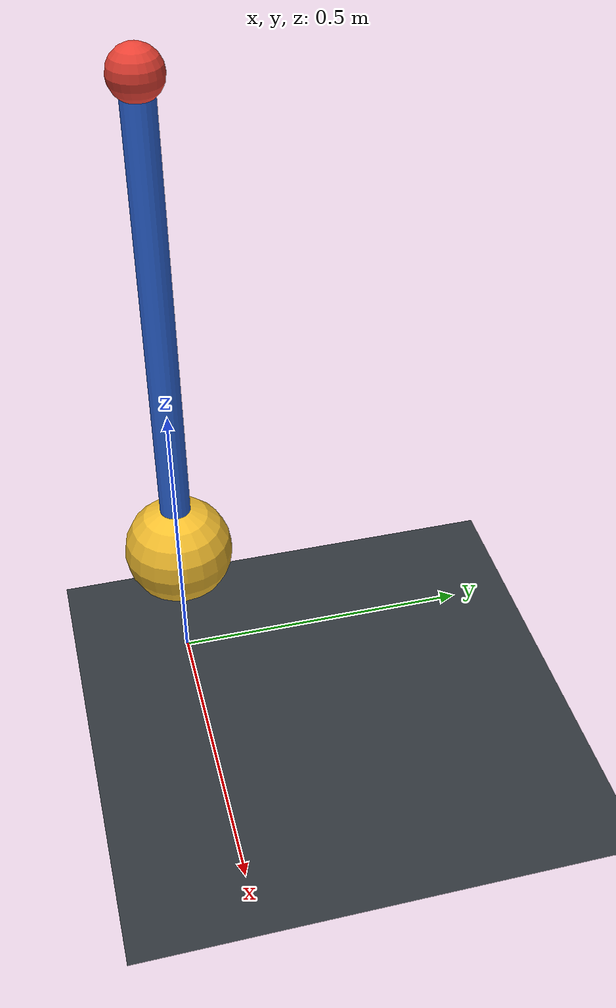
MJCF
<mujoco model="pendulum_demo">
  <compiler angle="degree"/>
  <option timestep="0.002" gravity="0 0 -9.81"/>

  <asset>
    <texture name="grid" type="2d" builtin="checker" rgb1="0.14 0.16 0.18" rgb2="0.22 0.25 0.27" width="300" height="300"/>
    <material name="grid" texture="grid" texrepeat="4 4" reflectance="0.2"/>
  </asset>

  <worldbody>
    <light name="key" pos="0 -3 4" dir="0 1 -1"/>
    <camera name="demo" pos="0 -2.5 1.1" xyaxes="1 0 0 0 0 1"/>
    <geom name="floor" type="plane" size="1.5 1.5 0.02" material="grid"/>

    <body name="pendulum" pos="0 0 1.05">
      <joint name="hinge" type="hinge" axis="0 1 0" damping="0.05"/>
      <geom name="pivot" type="sphere" size="0.04" rgba="0.9 0.25 0.2 1"/>
      <geom name="arm" type="capsule" fromto="0 0 0 0 0 -0.75" size="0.025" mass="0.3" rgba="0.2 0.45 0.95 1"/>
      <body name="bob" pos="0 0 -0.82">
        <geom name="bob_geom" type="sphere" size="0.09" mass="0.7" rgba="0.95 0.74 0.18 1"/>
      </body>
    </body>
  </worldbody>

  <actuator>
    <motor name="hinge_motor" joint="hinge" gear="0.12"/>
  </actuator>
</mujoco>
